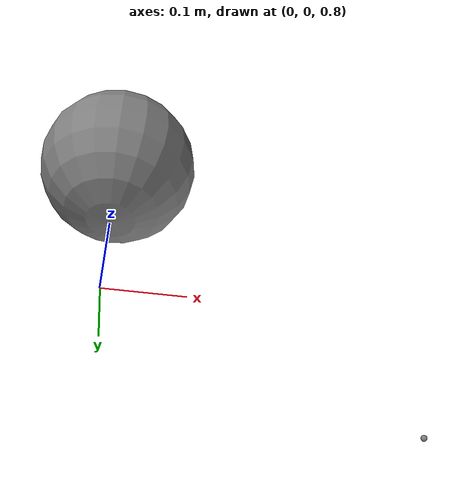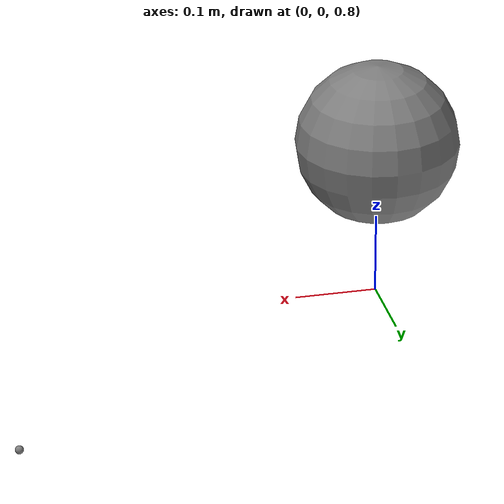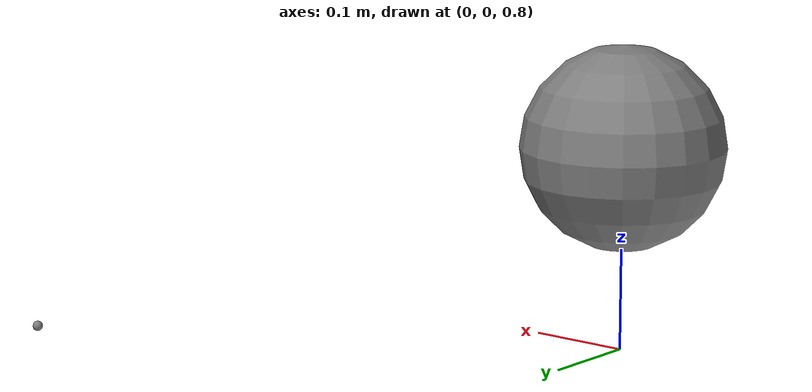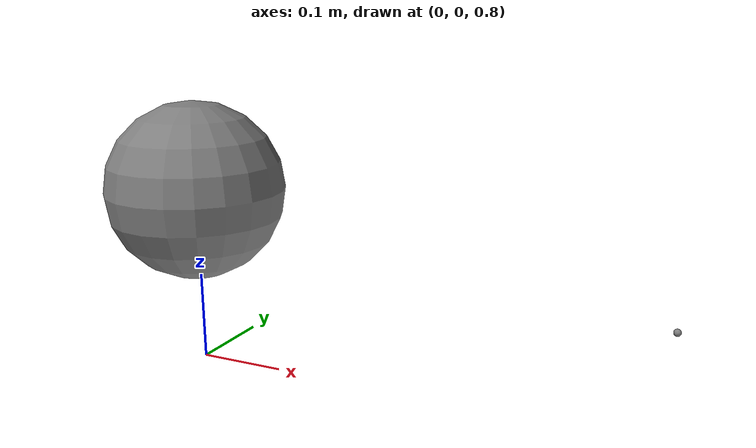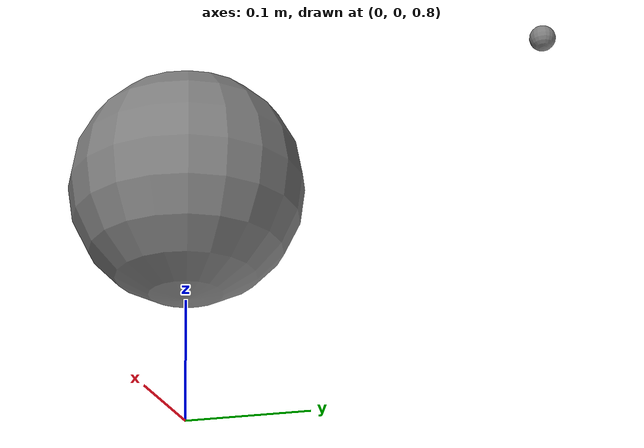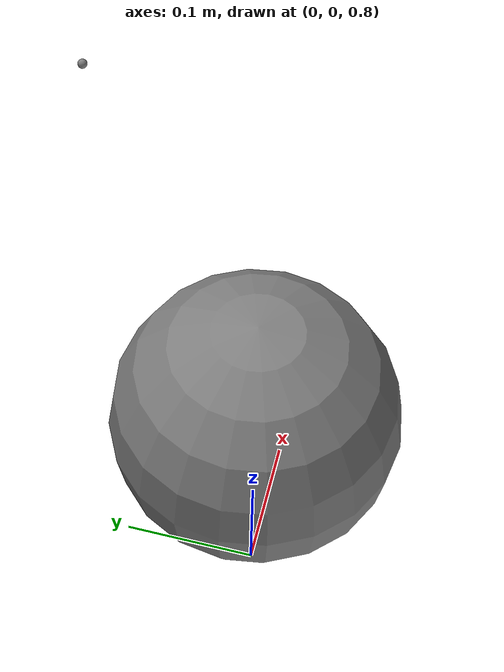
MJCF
<mujoco>
      <option gravity="0 0 -9.81"/>
      <worldbody>
        <body name="b1" pos="0 0 1">
          <joint name="j1" type="hinge" axis="0 1 0"/>
          <geom type="sphere" size="0.1" mass="1.0"/>
          <site name="s1" pos="0 0 0"/>
          <site name="s2" pos="0.5 0.3 -0.2"/>
        </body>
      </worldbody>
      <sensor>
        <force site="s1"/>
      </sensor>
    </mujoco>
